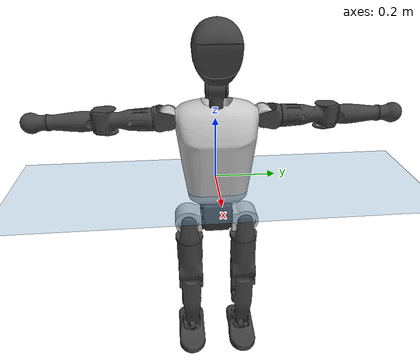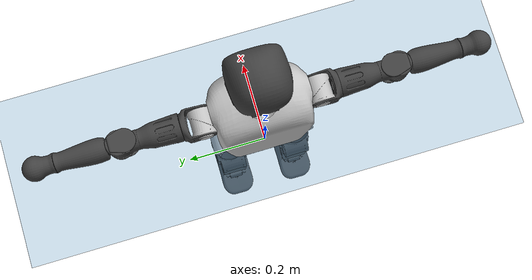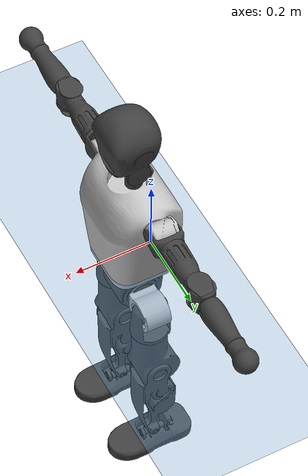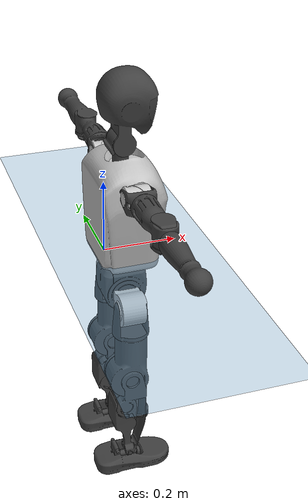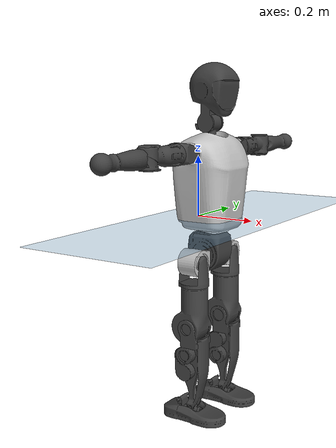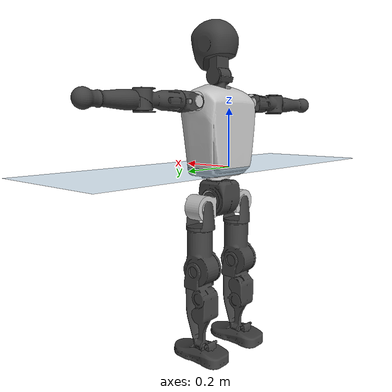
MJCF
<mujoco model="T1">
  <compiler angle="radian" assetdir="assets" balanceinertia="true" inertiafromgeom="false"/>

  <option timestep="0.005" density="1.2" viscosity="2e-05"/>

  <size nkey="1"/>

  <visual>
    <quality shadowsize="8192"/>
    <map shadowclip="0.5"/>
  </visual>

  <default>
    <default class="/">
      <joint armature="0.01" damping="0.01" frictionloss="0.1"/>
      <geom contype="0" conaffinity="0" group="1" solref="-1000 -80"/>
      <site size="0.01 0.005 0.005" group="5"/>
      <general forcelimited="true" biastype="affine" gainprm="25" biasprm="0 -25 -0.6"/>
      <default class="t1">
        <geom rgba="0.25 0.25 0.25 1"/>
        <default class="visual">
          <geom type="mesh" group="2"/>
        </default>
        <default class="collision">
          <geom group="3"/>
        </default>
        <default class="foot">
          <geom size="0.1115 0.05 0.015" type="box" condim="6" group="4" priority="1" solimp="0.015 1 0.015"/>
        </default>
        <default class="reward_collision_sphere">
          <geom group="5" rgba="1 0 0 1"/>
        </default>
      </default>
    </default>
  </default>

  <asset>
    <texture type="skybox" colorspace="auto" name="//unnamed_texture_0" builtin="gradient" rgb1="0.95 0.95 0.95" rgb2="0.95 0.95 0.95" width="100" height="600"/>
    <texture type="2d" colorspace="auto" name="texplane" builtin="checker" rgb1="0.345 0.575 0.748" rgb2="0.345 0.575 0.748" markrgb="1 1 1" width="512" height="512"/>
    <material name="MatPlane" class="/" texture="texplane" texuniform="true" texrepeat="2 2" specular="0.9"/>
    <mesh name="Trunk" class="/" file="Trunk.stl"/>
    <mesh name="H1" class="/" file="H1.stl"/>
    <mesh name="H2" class="/" file="H2.stl"/>
    <mesh name="AL1" class="/" file="AL1.stl"/>
    <mesh name="AL2" class="/" file="AL2.stl"/>
    <mesh name="AL3" class="/" file="AL3.stl"/>
    <mesh name="left_hand_link" class="/" file="left_hand_link.stl"/>
    <mesh name="AR1" class="/" file="AR1.stl"/>
    <mesh name="AR2" class="/" file="AR2.stl"/>
    <mesh name="AR3" class="/" file="AR3.stl"/>
    <mesh name="right_hand_link" class="/" file="right_hand_link.stl"/>
    <mesh name="Waist" class="/" file="Waist.stl"/>
    <mesh name="Hip_Pitch_Left" class="/" file="Hip_Pitch_Left.stl"/>
    <mesh name="Hip_Roll_Left" class="/" file="Hip_Roll_Left.stl"/>
    <mesh name="Hip_Yaw_Left" class="/" file="Hip_Yaw_Left.stl"/>
    <mesh name="Shank_Left" class="/" file="Shank_Left.stl"/>
    <mesh name="Ankle_Cross_Left" class="/" file="Ankle_Cross_Left.stl"/>
    <mesh name="left_foot_link" class="/" file="left_foot_link.stl"/>
    <mesh name="Hip_Pitch_Right" class="/" file="Hip_Pitch_Right.stl"/>
    <mesh name="Hip_Roll_Right" class="/" file="Hip_Roll_Right.stl"/>
    <mesh name="Hip_Yaw_Right" class="/" file="Hip_Yaw_Right.stl"/>
    <mesh name="Shank_Right" class="/" file="Shank_Right.stl"/>
    <mesh name="Ankle_Cross_Right" class="/" file="Ankle_Cross_Right.stl"/>
    <mesh name="right_foot_link" class="/" file="right_foot_link.stl"/>
  </asset>

  <worldbody>
    <geom name="floor" class="/" size="100 100 0.125" type="plane" group="0" material="MatPlane"/>
    <light name="toplight_shadow" class="/" pos="0 0 5" dir="0.0990148 0.0990148 -0.990148" type="directional" ambient="0.04 0.04 0.04" diffuse="0.55 0.55 0.55" specular="0.12 0.12 0.12"/>
    <light name="toplight_fill" class="/" pos="0 0 5" dir="0.0990148 0.0990148 -0.990148" type="directional" castshadow="false" ambient="0.04 0.04 0.04" diffuse="0.3 0.3 0.3" specular="0.08 0.08 0.08"/>
    <body name="trunk" childclass="t1" pos="2.05038e-05 -0.00232425 0.000846916" quat="1 0.000420326 9.10862e-05 -0.000380024">
      <inertial pos="0.0404067 -0.00021597 0.106299" quat="0.999952 0.000631141 -0.00857455 -0.00462413" mass="7.69988" diaginertia="0.020018 0.0451602 0.0581549"/>
      <joint name="//unnamed_joint_0" type="free" armature="0" damping="0" frictionloss="0"/>
      <geom name="//unnamed_geom_1" class="visual" rgba="0.76 0.76 0.76 1" mesh="Trunk"/>
      <geom name="//unnamed_geom_2" class="collision" size="0.0660735 0.088098 0.132147" pos="0.0443825 0 0.121063" type="box"/>
      <geom name="//unnamed_geom_3" class="reward_collision_sphere" size="0.101313" pos="0.0443825 0 0.100886"/>
      <geom name="//unnamed_geom_4" class="reward_collision_sphere" size="0.0132147" pos="0.0443825 0.0760221 0"/>
      <geom name="//unnamed_geom_5" class="reward_collision_sphere" size="0.0132147" pos="0.0443825 -0.0760221 0"/>
      <geom name="//unnamed_geom_6" class="reward_collision_sphere" size="0.0132147" pos="0.0443825 0.0956984 0.181594"/>
      <geom name="//unnamed_geom_7" class="reward_collision_sphere" size="0.0132147" pos="0.0443825 -0.0956984 0.181594"/>
      <site name="imu" pos="-0.00734484 -0.0131759 0.00263701" size="0.0088098"/>
      <camera name="track" pos="0 -1.78876 0" quat="0.707107 0.707107 0 0" mode="trackcom"/>
      <camera name="ego_camera" pos="0.0902443 0 0.423719" quat="-0.5 -0.5 0.5 0.5"/>
      <body name="H1" pos="0.0454702 0.000553869 0.245452" quat="1 -6.13724e-05 -0.000210597 0.000232747">
        <inertial pos="-0.000736733 -0.00113111 0.0591432" quat="0.770008 -0.00421928 0.00331602 0.638011" mass="0.298696" diaginertia="5.21577e-05 0.0001291 0.000152361"/>
        <joint name="AAHead_yaw" pos="0 0 0" axis="-0.00419065 -0.012214 0.999917" stiffness="0.00108166" range="-1.60155 1.55197" armature="0.00925086" damping="0.00981048" frictionloss="0.0797811"/>
        <geom name="//unnamed_geom_8" class="visual" mesh="H1"/>
        <body name="H2" pos="0.0018326 0.000797993 0.0625779" quat="1 -0.000144103 -5.92331e-05 1.81831e-05">
          <inertial pos="0.00527799 -0.0018526 0.0997921" quat="0.988881 0.102853 -0.0711372 -0.0804633" mass="0.42005" diaginertia="0.000440619 0.00103588 0.00174498"/>
          <joint name="Head_pitch" pos="0 0 0" axis="0.00681843 -0.999931 0.00956111" range="-1.20305 0.363069" armature="0.00835401" damping="0.00813449" frictionloss="0.0893296"/>
          <geom name="//unnamed_geom_9" class="visual" mesh="H2"/>
          <geom name="//unnamed_geom_10" class="collision" size="0.0704784" pos="0.00739708 0 0.110974"/>
          <geom name="//unnamed_geom_11" class="reward_collision_sphere" size="0.0792882" pos="0.0147942 0 0.100886"/>
        </body>
      </body>
      <body name="AL1" pos="0.0443497 0.0954846 0.220144" quat="1 -0.000285625 0.00014066 -8.20774e-05">
        <inertial pos="-0.0012123 0.0391046 -0.002708" quat="0.498699 0.50163 -0.496428 0.503216" mass="0.373835" diaginertia="0.000310155 0.000763896 0.000319279"/>
        <joint name="Left_Shoulder_Pitch" pos="0 0 0" axis="-0.0124958 0.999903 0.00607853" stiffness="0.000342607" range="-3.31286 1.22282" armature="0.00926139" damping="0.0128272" frictionloss="0.0850401"/>
        <geom name="//unnamed_geom_12" class="visual" rgba="0.76 0.76 0.76 1" mesh="AL1"/>
        <body name="AL2" pos="0.00201349 0.0411514 -0.00228298" quat="0.999999 0.000307019 0.000905611 -0.000558996">
          <inertial pos="0.00300045 0.0312446 -2.24453e-05" quat="0.487661 0.512318 -0.487514 0.511906" mass="0.107212" diaginertia="8.93996e-05 0.000193838 0.000181275"/>
          <joint name="Left_Shoulder_Roll" pos="0 0 0" axis="-0.999895 0.00372098 0.0139975" range="-1.51826 1.75727" armature="0.00885617" damping="0" frictionloss="0.0997632"/>
          <geom name="//unnamed_geom_13" class="visual" mesh="AL2"/>
          <body name="AL3" pos="0.00270833 0.0571068 0.00163975" quat="0.999999 -0.000698287 -0.000411372 0.000883172">
            <inertial pos="-7.17557e-05 0.0738428 0.000162803" quat="0.7095 0.7047 0.0016746 -0.00235723" mass="0.713468" diaginertia="0.00284171 0.00748815 0.000621638"/>
            <joint name="Left_Elbow_Pitch" pos="0 0 0" axis="-0.00857178 -0.999934 -0.00761296" range="-2.22103 2.21447" armature="0.0100451" damping="0" frictionloss="0.0974553"/>
            <geom name="//unnamed_geom_14" class="visual" mesh="AL3"/>
            <geom name="//unnamed_geom_15" class="collision" size="0.0264294 0.0660735" pos="0 0.0447189 0" quat="0.707105 0.707108 0 0" type="cylinder"/>
            <geom name="//unnamed_geom_16" class="reward_collision_sphere" size="0.0317153"/>
            <body name="left_hand_link" pos="0.00141014 0.13223 -0.00156687" quat="1 0.000453629 -2.92001e-05 -0.000704614">
              <inertial pos="-0.000244121 0.0985489 -0.00184331" quat="0.706873 0.707336 0.00251012 0.000413478" mass="0.226133" diaginertia="0.00181396 0.00469746 0.000221356"/>
              <joint name="Left_Elbow_Yaw" pos="0 0 0" axis="-0.0103564 0.00587465 0.999929" stiffness="0.00495197" range="-2.43963 0.01303" armature="0.00923332" damping="0.0128756" frictionloss="0.0931141"/>
              <geom name="//unnamed_geom_17" class="visual" mesh="left_hand_link"/>
              <geom name="//unnamed_geom_18" class="collision" size="0.0264294 0.0770858" pos="0 0.116269 0" quat="0.707105 0.707108 0 0" type="cylinder"/>
              <geom name="//unnamed_geom_19" class="reward_collision_sphere" size="0.044049"/>
              <geom name="//unnamed_geom_20" class="reward_collision_sphere" size="0.0308343" pos="0 0.0983816 0"/>
              <geom name="//unnamed_geom_21" class="reward_collision_sphere" size="0.0308343" pos="0 0.192291 0"/>
            </body>
          </body>
        </body>
      </body>
      <body name="AR1" pos="0.0427366 -0.0945553 0.220765" quat="1 -0.000235559 0.000338899 0.000274432">
        <inertial pos="-6.97357e-05 -0.0430284 0.00258893" quat="0.504558 0.494506 -0.506297 0.494519" mass="0.362279" diaginertia="0.000290409 0.000736412 0.000309865"/>
        <joint name="Right_Shoulder_Pitch" pos="0 0 0" axis="0.00435245 -0.99999 -0.000437515" range="-1.20839 3.31023" armature="0.00823059" damping="0.00272651" frictionloss="0.0833754"/>
        <geom name="//unnamed_geom_22" class="visual" rgba="0.76 0.76 0.76 1" mesh="AR1"/>
        <body name="AR2" pos="0.0005724 -0.0384983 -0.000421644" quat="1 -0.000251076 0.000280393 -8.35359e-05">
          <inertial pos="0.00362625 -0.0338211 -0.0024525" quat="0.515498 0.485327 -0.512109 0.486276" mass="0.109207" diaginertia="8.58806e-05 0.000188808 0.000176713"/>
          <joint name="Right_Shoulder_Roll" pos="0 0 0" axis="-0.99995 0.00196646 0.00983245" stiffness="0.0112373" range="-1.72237 1.6238" armature="0.00876671" damping="0" frictionloss="0.0878507"/>
          <geom name="//unnamed_geom_23" class="visual" mesh="AR2"/>
          <body name="AR3" pos="0.00156342 -0.0542033 -0.00169072" quat="1 -0.000209408 6.56793e-05 0.000326012">
            <inertial pos="-0.000699103 -0.0773065 0.000814155" quat="0.708356 0.705855 -0.000636868 -1.92347e-05" mass="0.694419" diaginertia="0.00284266 0.00745338 0.000652654"/>
            <joint name="Right_Elbow_Pitch" pos="0 0 0" axis="0.000598002 0.999998 -0.00206331" range="-2.26434 2.27042" armature="0.00998783" damping="0.0088813" frictionloss="0.0763035"/>
            <geom name="//unnamed_geom_24" class="visual" mesh="AR3"/>
            <geom name="//unnamed_geom_25" class="collision" size="0.0264294 0.0660735" pos="0 -0.0447189 0" quat="0.707105 0.707108 0 0" type="cylinder"/>
            <geom name="//unnamed_geom_26" class="reward_collision_sphere" size="0.0317153"/>
            <body name="right_hand_link" pos="-6.03585e-05 -0.131803 -0.000166798" quat="1 0.000529639 -0.000533128 0.000187824">
              <inertial pos="0.000671419 -0.0981939 -0.0019323" quat="0.703038 0.711037 0.00975768 -0.00829581" mass="0.230286" diaginertia="0.00174282 0.00464863 0.000227618"/>
              <joint name="Right_Elbow_Yaw" pos="0 0 0" axis="0.000780952 0.00260419 0.999996" range="-0.0545053 2.49188" armature="0.00911831" damping="0.0110061" frictionloss="0.0841553"/>
              <geom name="//unnamed_geom_27" class="visual" mesh="right_hand_link"/>
              <geom name="//unnamed_geom_28" class="collision" size="0.0264294 0.0770858" pos="0 -0.116269 0" quat="0.707105 0.707108 0 0" type="cylinder"/>
              <geom name="//unnamed_geom_29" class="reward_collision_sphere" size="0.044049"/>
              <geom name="//unnamed_geom_30" class="reward_collision_sphere" size="0.0308343" pos="0 -0.0983816 0"/>
              <geom name="//unnamed_geom_31" class="reward_collision_sphere" size="0.0308343" pos="0 -0.192291 0"/>
            </body>
          </body>
        </body>
      </body>
      <body name="Waist" pos="0.046973 -0.000912936 -0.11718" quat="1 -0.000129615 -0.000104648 3.74522e-05">
        <inertial pos="0.000147051 1.96698e-05 0.00831432" quat="0.983998 0.000739636 -0.178175 -0.000889561" mass="1.72963" diaginertia="0.00115158 0.00303161 0.00496466"/>
        <joint name="Waist" pos="0 0 0" axis="0.00987504 -0.0104713 0.999896" range="-1.56705 1.56799" armature="0.00868045" damping="0.02365" frictionloss="0.07715"/>
        <geom name="//unnamed_geom_32" class="visual" mesh="Waist"/>
        <body name="Hip_Pitch_Left" pos="0.00272385 0.0967057 -0.000153087" quat="1 -3.12509e-05 -3.96772e-05 -3.01201e-05">
          <inertial pos="0.00326693 -0.00639218 -0.0210482" quat="0.973331 0.229282 0.00608339 -0.00453011" mass="0.71428" diaginertia="0.00040201 0.000839095 0.00130848"/>
          <joint name="Left_Hip_Pitch" pos="0 0 0" axis="0.00246903 0.999997 -0.00092408" range="-1.79571 1.62506" armature="0.00886498" damping="0" frictionloss="0.0924701"/>
          <geom name="//unnamed_geom_33" class="visual" rgba="0.76 0.76 0.76 1" mesh="Hip_Pitch_Left"/>
          <body name="Hip_Roll_Left" pos="0.00228726 -0.0013059 -0.0180385" quat="1 -0.000314692 6.14483e-05 -0.000157356">
            <inertial pos="-0.000511971 0.00238591 -0.0546159" quat="0.708397 -0.0129469 -0.01224 0.705589" mass="0.252558" diaginertia="0.000386396 0.000817286 0.00052033"/>
            <joint name="Left_Hip_Roll" pos="0 0 0" axis="-0.999996 0.000625809 0.00257758" range="-1.57923 0.206201" armature="0.00897827" damping="0.00648332" frictionloss="0.0797268"/>
            <geom name="//unnamed_geom_34" class="visual" mesh="Hip_Roll_Left"/>
            <geom name="//unnamed_geom_35" class="reward_collision_sphere" size="0.0484539"/>
            <body name="Hip_Yaw_Left" pos="0.000191957 0.00141333 -0.0812674" quat="1 -0.000160981 0.000244308 -0.000263313">
              <inertial pos="-0.00454759 -0.00047408 -0.0895024" quat="0.688889 -0.0403578 -0.0267408 0.723248" mass="1.42762" diaginertia="0.00564674 0.0142013 0.00270083"/>
              <joint name="Left_Hip_Yaw" pos="0 0 0" axis="0.0107686 -0.00543663 -0.999927" range="-0.996323 0.962759" armature="0.00883465" damping="0.00566746" frictionloss="0.0901119"/>
              <geom name="//unnamed_geom_36" class="visual" mesh="Hip_Yaw_Left"/>
              <geom name="//unnamed_geom_37" class="collision" size="0.044049 0.0704784" type="cylinder"/>
              <body name="Shank_Left" pos="-0.00736859 0.00213093 -0.138427" quat="1 0.000263667 3.07394e-05 -0.000254077">
                <inertial pos="-0.00550737 -0.00243869 -0.125618" quat="0.997583 -0.0018117 -0.024177 0.0651186" mass="1.1777" diaginertia="0.00790331 0.0197445 0.00199822"/>
                <joint name="Left_Knee_Pitch" pos="0 0 0" axis="0.0058339 0.999966 -0.00578781" range="0.0139262 2.34541" armature="0.00855804" damping="0.0149998" frictionloss="0.0992591"/>
                <geom name="//unnamed_geom_38" class="visual" mesh="Shank_Left"/>
                <geom name="//unnamed_geom_39" class="collision" size="0.044049 0.0660735" pos="0 0 -0.121063" type="cylinder"/>
                <geom name="//unnamed_geom_40" class="reward_collision_sphere" size="0.0572637"/>
                <body name="Ankle_Cross_Left" pos="-0.000904808 -0.00164208 -0.284569" quat="1 5.09144e-06 9.80978e-06 -1.27478e-05">
                  <inertial pos="-0.00289875 -0.000110391 -0.00692811" quat="0.444095 0.550875 0.553692 0.439023" mass="0.0472279" diaginertia="6.39115e-06 1.37359e-05 1.15541e-05"/>
                  <joint name="Left_Ankle_Pitch" pos="0 0 0" axis="-0.00405596 0.999883 0.0147354" range="-0.864448 0.369865" armature="0.00878672" damping="0.00494189" frictionloss="0.0860003"/>
                  <geom name="//unnamed_geom_41" class="visual" mesh="Ankle_Cross_Left"/>
                  <body name="left_foot_link" pos="2.2335e-06 0.000815535 -0.0122379" quat="0.999999 -0.000189551 -0.00137005 -0.00019234">
                    <inertial pos="0.00260843 0.000793766 -0.00901008" quat="-0.00522038 0.628148 -0.00490692 0.778061" mass="0.471279" diaginertia="0.000598706 0.00137198 0.00223446"/>
                    <joint name="Left_Ankle_Roll" pos="0 0 0" axis="-0.999996 -0.00269026 -0.00130479" range="-0.442004 0.422197" armature="0.00877716" damping="0" frictionloss="0.0866765"/>
                    <geom name="//unnamed_geom_42" class="visual" mesh="left_foot_link"/>
                    <geom name="left_foot" class="foot" size="0.107498 0.0409978 0.0120327" pos="0.00739708 0 -0.0151328"/>
                    <geom name="//unnamed_geom_44" class="reward_collision_sphere" size="0.045811" pos="0.00739708 0 -0.0151328"/>
                    <geom name="//unnamed_geom_45" class="reward_collision_sphere" size="0.0264294" pos="0.0702722 -0.0205707 -0.0151328"/>
                    <geom name="//unnamed_geom_46" class="reward_collision_sphere" size="0.0264294" pos="-0.0517795 -0.0205707 -0.0151328"/>
                    <site name="left_foot" class="foot" pos="0.00739708 0 -0.0151328" size="0.0088098"/>
                  </body>
                </body>
              </body>
            </body>
          </body>
        </body>
        <body name="Hip_Pitch_Right" pos="-0.00287922 -0.095539 0.000925553" quat="0.999999 2.89788e-05 0.000709513 -0.00100333">
          <inertial pos="-0.00074117 0.00763981 -0.0156127" quat="0.973677 -0.227391 0.0153254 -0.0035199" mass="0.7176" diaginertia="0.000405394 0.000851099 0.00134942"/>
          <joint name="Right_Hip_Pitch" pos="0 0 0" axis="0.00287015 -0.999993 0.0023552" stiffness="0.000827183" range="-1.57417 1.80203" armature="0.00878223" damping="0" frictionloss="0.096796"/>
          <geom name="//unnamed_geom_47" class="visual" rgba="0.76 0.76 0.76 1" mesh="Hip_Pitch_Right"/>
          <body name="Hip_Roll_Right" pos="0.00227023 0.00127145 -0.0204577" quat="1 0.000266048 0.000304939 5.54917e-05">
            <inertial pos="-0.00147845 -0.00110584 -0.0563746" quat="0.708413 -0.00309728 -0.00701869 0.705756" mass="0.269907" diaginertia="0.000382382 0.000861411 0.000534755"/>
            <joint name="Right_Hip_Roll" pos="0 0 0" axis="-0.999979 0.00416478 0.00497356" stiffness="0.00109453" range="-0.227679 1.59242" armature="0.00919279" damping="0.00337982" frictionloss="0.0846695"/>
            <geom name="//unnamed_geom_48" class="visual" mesh="Hip_Roll_Right"/>
            <geom name="//unnamed_geom_49" class="reward_collision_sphere" size="0.0484539"/>
            <body name="Hip_Yaw_Right" pos="-0.000626892 0.00020459 -0.0823778" quat="1 -0.000313249 -4.91799e-05 -4.15169e-05">
              <inertial pos="-0.00509243 -0.0030236 -0.0874429" quat="0.714704 -0.0287972 -0.0292432 0.698222" mass="1.52993" diaginertia="0.00570893 0.0153261 0.00270845"/>
              <joint name="Right_Hip_Yaw" pos="0 0 0" axis="0.000761298 0.000580415 -1" stiffness="0.0108744" range="-0.980288 0.99721" armature="0.00760881" damping="0" frictionloss="0.0926922"/>
              <geom name="//unnamed_geom_50" class="visual" mesh="Hip_Yaw_Right"/>
              <geom name="//unnamed_geom_51" class="collision" size="0.044049 0.0704784" type="cylinder"/>
              <body name="Shank_Right" pos="-0.00756417 -0.000377529 -0.135586" quat="1 -0.000117557 -9.46787e-05 -0.000109377">
                <inertial pos="-0.0017181 0.00223427 -0.124307" quat="0.999418 -0.00623083 -0.025216 -0.0221168" mass="1.26483" diaginertia="0.00830612 0.0207641 0.0020963"/>
                <joint name="Right_Knee_Pitch" pos="0 0 0" axis="-0.00467536 -0.999982 -0.00379355" range="-2.34244 -0.00838093" armature="0.00838701" damping="0.00241706" frictionloss="0.0902574"/>
                <geom name="//unnamed_geom_52" class="visual" mesh="Shank_Right"/>
                <geom name="//unnamed_geom_53" class="collision" size="0.044049 0.0660735" pos="0 0 -0.121063" type="cylinder"/>
                <geom name="//unnamed_geom_54" class="reward_collision_sphere" size="0.0572637"/>
                <body name="Ankle_Cross_Right" pos="0.00178062 -0.0010115 -0.282312" quat="1 0.000392531 -0.000160354 2.27224e-05">
                  <inertial pos="-0.00335316 0.00135941 -0.00776215" quat="0.444881 0.549263 0.549642 0.445293" mass="0.0486101" diaginertia="6.59531e-06 1.47069e-05 1.16971e-05"/>
                  <joint name="Right_Ankle_Pitch" pos="0 0 0" axis="-0.0141728 -0.999897 -0.00243454" range="-0.340405 0.876954" armature="0.00844372" damping="0.00194258" frictionloss="0.0847752"/>
                  <geom name="//unnamed_geom_55" class="visual" mesh="Ankle_Cross_Right"/>
                  <body name="right_foot_link" pos="0.000661483 -0.00349353 -0.00984154" quat="1 0.000109608 -0.000240933 4.85814e-05">
                    <inertial pos="0.00266701 -0.000192789 -0.00761236" quat="-0.00906927 0.624037 -0.00421336 0.781331" mass="0.467991" diaginertia="0.000616871 0.00136107 0.00226828"/>
                    <joint name="Right_Ankle_Roll" pos="0 0 0" axis="-0.999908 0.0123594 0.00559371" range="-0.43929 0.44497" armature="0.00868321" damping="0.00448331" frictionloss="0.0761996"/>
                    <geom name="//unnamed_geom_56" class="visual" mesh="right_foot_link"/>
                    <geom name="right_foot" class="foot" size="0.101304 0.0409076 0.0125264" pos="0.00739708 0 -0.0151328"/>
                    <geom name="//unnamed_geom_58" class="reward_collision_sphere" size="0.0352392"/>
                    <geom name="//unnamed_geom_59" class="reward_collision_sphere" size="0.0264294" pos="0.00739708 0 -0.0151328"/>
                    <geom name="//unnamed_geom_60" class="reward_collision_sphere" size="0.0264294" pos="0.0702722 0.0205707 -0.0151328"/>
                    <geom name="//unnamed_geom_61" class="reward_collision_sphere" size="0.0264294" pos="-0.0517795 0.0205707 -0.0151328"/>
                    <site name="right_foot" class="foot" pos="0.00739708 0 -0.0151328" size="0.0088098"/>
                  </body>
                </body>
              </body>
            </body>
          </body>
        </body>
      </body>
    </body>
  </worldbody>

  <contact>
    <pair class="/" geom1="floor" geom2="left_foot" name="//unnamed_contact_0"/>
    <pair class="/" geom1="floor" geom2="right_foot" name="//unnamed_contact_1"/>
  </contact>

  <actuator>
    <general name="AAHead_yaw" class="/" joint="AAHead_yaw" forcerange="-5.56561 5.56561" gainprm="22.4775" biasprm="0 -22.4775 -0.499669"/>
    <general name="Head_pitch" class="/" joint="Head_pitch" forcerange="-6.09501 6.09501" gainprm="22.4775" biasprm="0 -22.4775 -0.499669"/>
    <general name="Left_Shoulder_Pitch" class="/" joint="Left_Shoulder_Pitch" forcerange="-16.026 16.026" gainprm="22.4775" biasprm="0 -22.4775 -0.499669"/>
    <general name="Left_Shoulder_Roll" class="/" joint="Left_Shoulder_Roll" forcerange="-15.5728 15.5728" gainprm="22.4775" biasprm="0 -22.4775 -0.499669"/>
    <general name="Left_Elbow_Pitch" class="/" joint="Left_Elbow_Pitch" forcerange="-17.2506 17.2506" gainprm="22.4775" biasprm="0 -22.4775 -0.499669"/>
    <general name="Left_Elbow_Yaw" class="/" joint="Left_Elbow_Yaw" forcerange="-17.5357 17.5357" gainprm="22.4775" biasprm="0 -22.4775 -0.499669"/>
    <general name="Right_Shoulder_Pitch" class="/" joint="Right_Shoulder_Pitch" forcerange="-15.9059 15.9059" gainprm="22.4775" biasprm="0 -22.4775 -0.499669"/>
    <general name="Right_Shoulder_Roll" class="/" joint="Right_Shoulder_Roll" forcerange="-17.208 17.208" gainprm="22.4775" biasprm="0 -22.4775 -0.499669"/>
    <general name="Right_Elbow_Pitch" class="/" joint="Right_Elbow_Pitch" forcerange="-16.7339 16.7339" gainprm="22.4775" biasprm="0 -22.4775 -0.499669"/>
    <general name="Right_Elbow_Yaw" class="/" joint="Right_Elbow_Yaw" forcerange="-14.4953 14.4953" gainprm="22.4775" biasprm="0 -22.4775 -0.499669"/>
    <general name="Waist" class="/" joint="Waist" forcerange="-26.5236 26.5236" gainprm="22.4775" biasprm="0 -22.4775 -0.499669"/>
    <general name="Left_Hip_Pitch" class="/" joint="Left_Hip_Pitch" forcerange="-41.4246 41.4246" gainprm="22.4775" biasprm="0 -22.4775 -0.499669"/>
    <general name="Left_Hip_Roll" class="/" joint="Left_Hip_Roll" forcerange="-27.1356 27.1356" gainprm="22.4775" biasprm="0 -22.4775 -0.499669"/>
    <general name="Left_Hip_Yaw" class="/" joint="Left_Hip_Yaw" forcerange="-25.805 25.805" gainprm="22.4775" biasprm="0 -22.4775 -0.499669"/>
    <general name="Left_Knee_Pitch" class="/" joint="Left_Knee_Pitch" forcerange="-52.7714 52.7714" gainprm="22.4775" biasprm="0 -22.4775 -0.499669"/>
    <general name="Left_Ankle_Pitch" class="/" joint="Left_Ankle_Pitch" forcerange="-16.9903 16.9903" gainprm="22.4775" biasprm="0 -22.4775 -0.499669"/>
    <general name="Left_Ankle_Roll" class="/" joint="Left_Ankle_Roll" forcerange="-13.2288 13.2288" gainprm="22.4775" biasprm="0 -22.4775 -0.499669"/>
    <general name="Right_Hip_Pitch" class="/" joint="Right_Hip_Pitch" forcerange="-39.1964 39.1964" gainprm="22.4775" biasprm="0 -22.4775 -0.499669"/>
    <general name="Right_Hip_Roll" class="/" joint="Right_Hip_Roll" forcerange="-26.4348 26.4348" gainprm="22.4775" biasprm="0 -22.4775 -0.499669"/>
    <general name="Right_Hip_Yaw" class="/" joint="Right_Hip_Yaw" forcerange="-26.9877 26.9877" gainprm="22.4775" biasprm="0 -22.4775 -0.499669"/>
    <general name="Right_Knee_Pitch" class="/" joint="Right_Knee_Pitch" forcerange="-51.4141 51.4141" gainprm="22.4775" biasprm="0 -22.4775 -0.499669"/>
    <general name="Right_Ankle_Pitch" class="/" joint="Right_Ankle_Pitch" forcerange="-16.1926 16.1926" gainprm="22.4775" biasprm="0 -22.4775 -0.499669"/>
    <general name="Right_Ankle_Roll" class="/" joint="Right_Ankle_Roll" forcerange="-13.8474 13.8474" gainprm="22.4775" biasprm="0 -22.4775 -0.499669"/>
  </actuator>

  <sensor>
    <gyro site="imu" name="imu_angular_velocity"/>
    <velocimeter site="imu" name="imu_linear_velocity"/>
    <framelinvel objtype="site" objname="left_foot" name="left_foot_global_linear_velocity"/>
    <framelinvel objtype="site" objname="right_foot" name="right_foot_global_linear_velocity"/>
  </sensor>

  <keyframe>
    <key name="home" qpos="0 0 0.6385 1 0 0 0 0 0 0 1.4 0 -0.4 0 -1.4 0 0.4 0 -0.4 0 0 0.8 -0.4 0 0.4 0 0 -0.8 0.4 0"/>
  </keyframe>
</mujoco>
